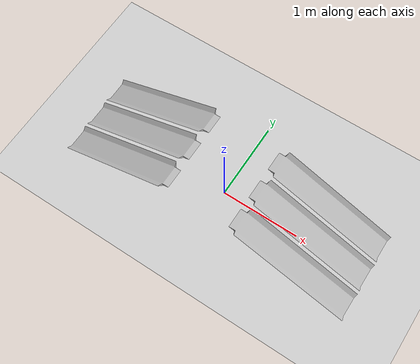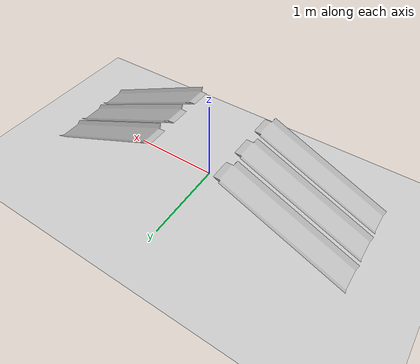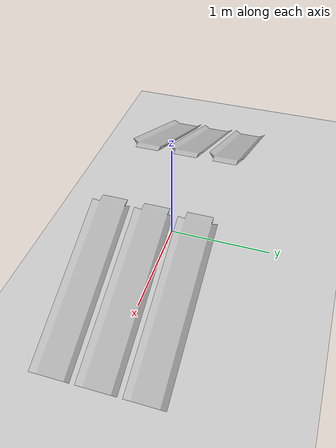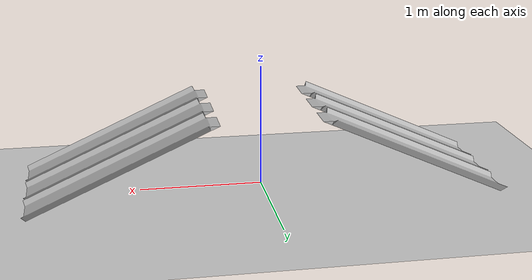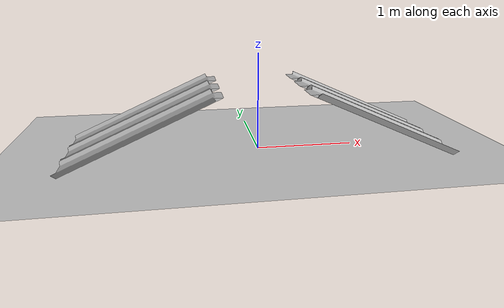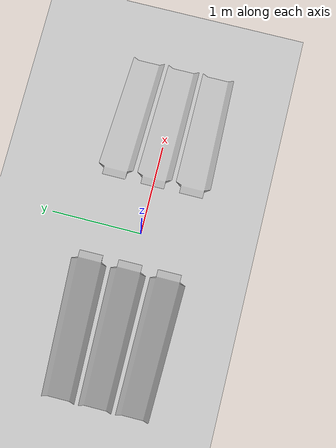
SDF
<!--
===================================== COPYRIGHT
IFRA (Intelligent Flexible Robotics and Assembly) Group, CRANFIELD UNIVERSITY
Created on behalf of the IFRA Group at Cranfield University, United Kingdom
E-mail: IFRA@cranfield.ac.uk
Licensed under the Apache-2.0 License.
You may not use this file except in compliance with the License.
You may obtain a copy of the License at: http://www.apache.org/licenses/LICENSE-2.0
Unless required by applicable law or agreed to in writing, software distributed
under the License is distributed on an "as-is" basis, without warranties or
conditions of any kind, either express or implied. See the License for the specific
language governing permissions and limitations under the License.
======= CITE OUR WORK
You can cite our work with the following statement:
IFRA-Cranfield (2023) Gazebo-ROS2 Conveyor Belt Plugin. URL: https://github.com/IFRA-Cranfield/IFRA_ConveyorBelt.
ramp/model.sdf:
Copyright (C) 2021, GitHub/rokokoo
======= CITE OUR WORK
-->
<sdf version="1.4">
 <world name="default">
  <gravity>0 0 -9.8</gravity>
  <include><uri>model://ground_plane</uri></include>
  <include><uri>model://sun</uri></include>
  <scene><shadows>0</shadows></scene>
  <include><name>ramp_1</name><pose>0.4 -0.13 0 0 0 0</pose><uri>model://ramp</uri></include>
  <include><name>ramp_2</name><pose>-0.4 0.13 0 0 0 3.14</pose><uri>model://ramp</uri></include>
  <include><name>ramp_3</name><pose>0.4 0.27 0 0 0 0</pose><uri>model://ramp</uri></include>
  <include><name>ramp_4</name><pose>0.4 -0.53 0 0 0 0</pose><uri>model://ramp</uri></include>
  <include><name>ramp_5</name><pose>-0.4 0.53 0 0 0 3.14</pose><uri>model://ramp</uri></include>
  <include><name>ramp_6</name><pose>-0.4 -0.27 0 0 0 3.14</pose><uri>model://ramp</uri></include>
 </world>
</sdf>

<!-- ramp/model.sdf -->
<sdf version="1.4">

    <model name="conveyor_belt_ramp">
        <static>true</static>

        <link name="ramp_visual">
            <visual name="visual">
                <geometry>
                    <mesh>
                        <scale>0.001 0.0006 0.0009</scale>
                        <uri>model://ramp/meshes/ramp.dae</uri>
                    </mesh>
                </geometry>
            </visual>
            <collision name="collision">
                <origin xyz="0.0 0.0 0" rpy="0.0 0.0 0.0"/>
                <geometry>
                    <mesh>
                        <scale>0.001 0.0006 0.0009</scale>
                        <uri>model://ramp/meshes/ramp.dae</uri>
                    </mesh>
                </geometry>
            </collision>
        </link>

     </model>

</sdf>
